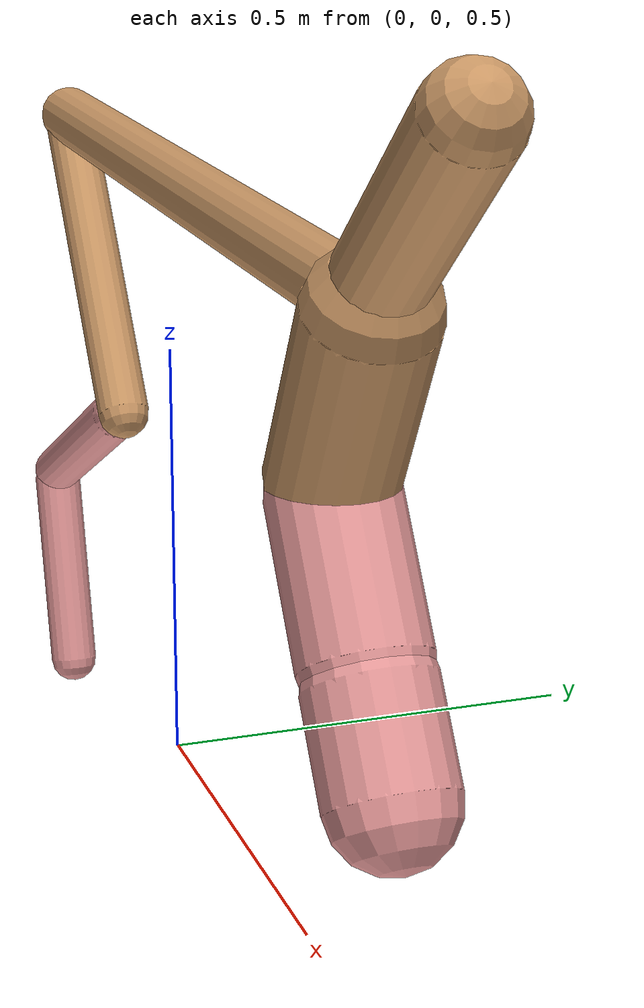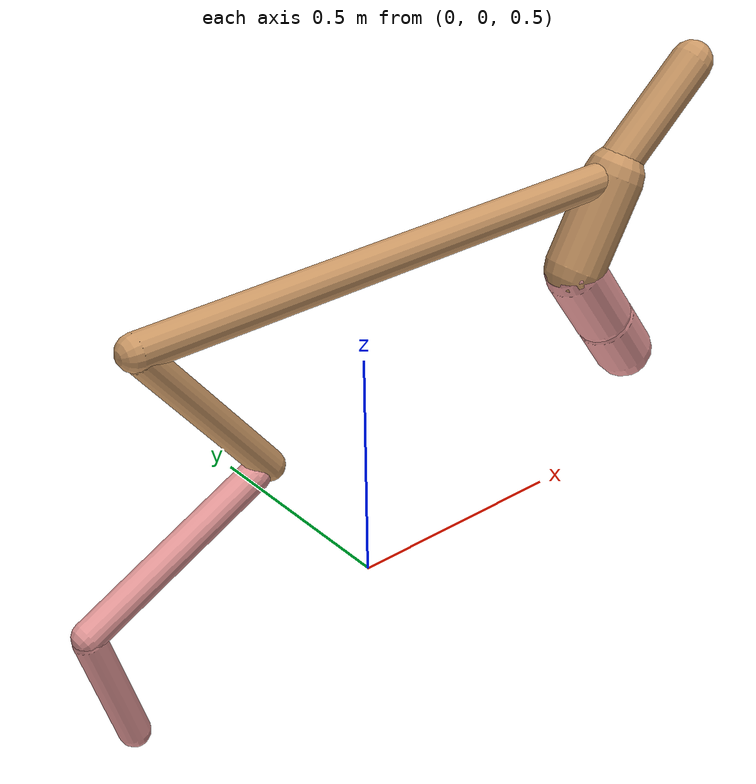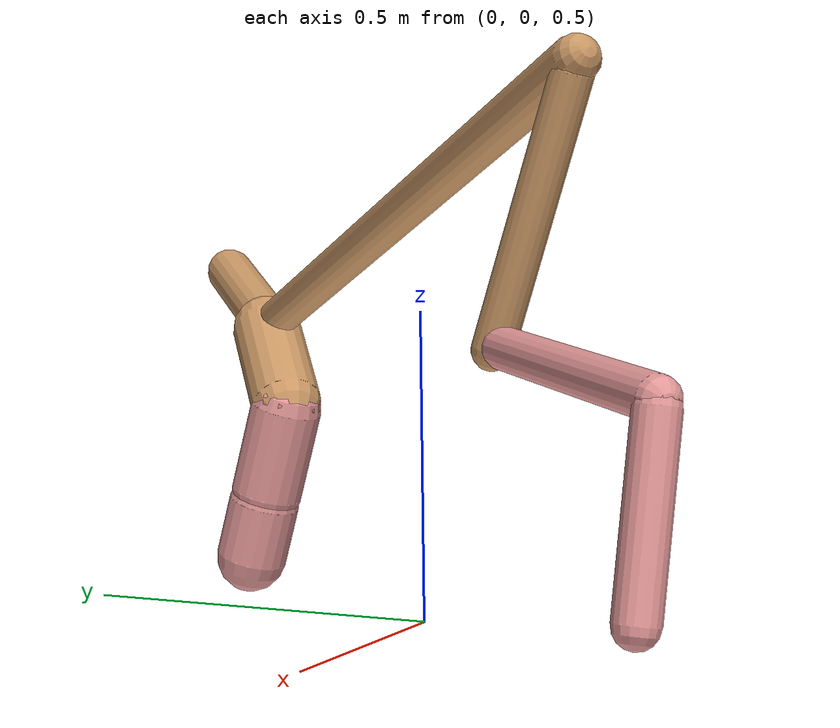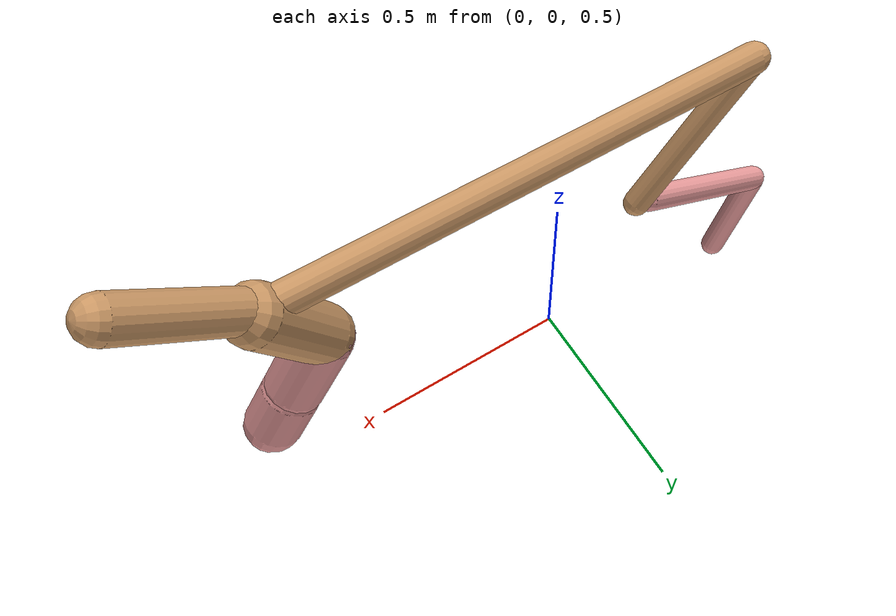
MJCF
<mujoco model="cheetah">
  <compiler angle="radian" coordinate="local" inertiafromgeom="true" settotalmass="14" />
  <default>
    <joint armature=".1" damping=".01" limited="true" solimplimit="0 .8 .03" solreflimit=".02 1" stiffness="8" />
    <geom conaffinity="0" condim="3" contype="1" friction="0.8 .1 .1" rgba="0.8 0.6 .4 1" solimp="0.0 0.8 0.01" solref="0.02 1" />
    <motor ctrllimited="true" ctrlrange="-1 1" />
  </default>
  <size nstack="300000" nuser_geom="1" />
  <option gravity="0 0 -9.81" timestep="0.01" />
  <worldbody>
    <body name="torso" pos="0.0 0.0 1.2017288028369029">
      <joint armature="0" axis="1 0 0" damping="0" limited="false" name="ignorex" pos="0 0 0" stiffness="0" type="slide" />
      <joint armature="0" axis="0 0 1" damping="0" limited="false" name="ignorez" pos="0 0 0" stiffness="0" type="slide" />
      <joint armature="0" axis="0 1 0" damping="0" limited="false" name="ignorey" pos="0 0 0" stiffness="0" type="hinge" />
      <geom fromto="-0.5 0.0 0.0 0.6832875312778299 0.0 0.0" name="torso" size="0.036554907686077096" type="capsule" />
      <geom axisangle="0 1 0 .87" name="head" pos="0.7832875312778299 0.0 0.1" size="0.046527857119872125 0.15" type="capsule" />

      <body name="bthigh" pos="-.5 0 0">
        <joint axis="0 1 0" damping="6" name="bthigh" pos="0 0 0" range="-.52 1.05" stiffness="240" type="hinge" />
        <geom axisangle="0 1 0 -3.8" name="bthigh" pos="0.1375905680229615 0.0 -0.17886773842984993" size="0.0322 0.20665311560283975" type="capsule" />
        <body name="bshin" pos="0.23518113604592294 0.0 -0.34773547685969985">
          <joint axis="0 1 0" damping="4.5" name="bshin" pos="0 0 0" range="-.785 .785" stiffness="180" type="hinge" />
          <geom axisangle="0 1 0 -2.03" name="bshin" pos="-0.19704574793624938 0.0 -0.09852287396812469" rgba="0.9 0.6 0.6 1" size="0.0322 0.21377908510638596" type="capsule" />
          <body name="bfoot" pos="-0.39409149587249875 0.0 -0.19704574793624938">
            <joint axis="0 1 0" damping="3" name="bfoot" pos="0 0 0" range="-.4 .785" stiffness="120" type="hinge" />
            <geom axisangle="0 1 0 -.27" name="bfoot" pos="0.041809400858886944 0.0 -0.13518372944373447" rgba="0.9 0.6 0.6 1" size="0.0322 0.13396822666666855" type="capsule" />
            <inertial mass="10" />
          </body>
        </body>
      </body>
      <body name="fthigh" pos="0.6832875312778299 0.0 0.0">
        <joint axis="0 1 0" damping="4.5" name="fthigh" pos="0 0 0" range="-1.5 0.8" stiffness="180" type="hinge" />
        <geom axisangle="0 1 0 .52" name="fthigh" pos="-0.05646822012746161 0.0 -0.09680266307564846" size="0.06595962334394043 0.10614435800617086" type="capsule" />
        <body name="fshin" pos="-0.11293644025492322 0.0 -0.1936053261512969">
          <joint axis="0 1 0" damping="3" name="fshin" pos="0 0 0" range="-1.2 1.1" stiffness="120" type="hinge" />
          <geom axisangle="0 1 0 -.6" name="fshin" pos="0.0524683096337582 0.0 -0.0726484287236652" rgba="0.9 0.6 0.6 1" size="0.06595962334394043 0.08459625525303843" type="capsule" />
          <body name="ffoot" pos="0.1049366192675164 0.0 -0.1452968574473304">
            <joint axis="0 1 0" damping="1.5" name="ffoot" pos="0 0 0" range="-3.1 -0.3" stiffness="60" type="hinge" />
            <geom axisangle="0 1 0 -.6" name="ffoot" pos="0.03735663564328385 0.0 -0.05811032211177489" rgba="0.9 0.6 0.6 1" size="0.06595962334394043 0.0558654515821952" type="capsule" />
            <inertial mass="10" />
          </body>
        </body>
      </body>
    </body>
  </worldbody>
  <actuator>
    <motor gear="120" joint="bthigh" name="bthigh" />
    <motor gear="90" joint="bshin" name="bshin" />
    <motor gear="60" joint="bfoot" name="bfoot" />
    <motor gear="120" joint="fthigh" name="fthigh" />
    <motor gear="60" joint="fshin" name="fshin" />
    <motor gear="30" joint="ffoot" name="ffoot" />
  </actuator>
</mujoco>
